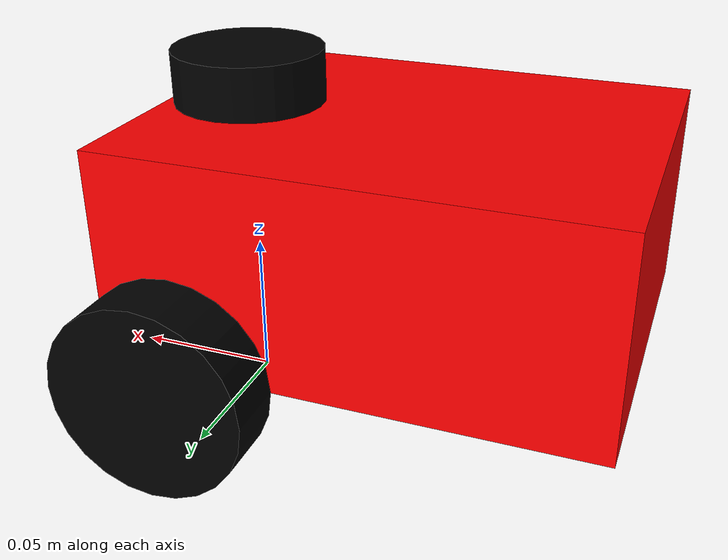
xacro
<?xml version="1.0"?>
<robot xmlns:xacro="http://www.ros.org/wiki/xacro"  name="my_robot">
        <xacro:arg name="sim_mode" default="false"/>

        <xacro:include filename="robot_real.xacro"/>
        <xacro:include filename="$(find diffbot_control)/ros2_control/ros2_control.xacro" />
        <xacro:include filename="lidar.xacro" />
</robot>

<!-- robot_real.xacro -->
<robot xmlns:xacro="http://www.ros.org/wiki/xacro">

        <xacro:include filename="inertial_macros.xacro" />

        <xacro:property name="chassis_length" value="0.16" />
        <xacro:property name="chassis_width" value="0.12" />
        <xacro:property name="chassis_height" value="0.07" />
        <xacro:property name="chassis_mass" value="0.5" />
        <xacro:property name="chassis_origin_x_offset" value="0.025" />
        <xacro:property name="wheel_radius" value="0.0325" />
        <xacro:property name="wheel_thickness" value="0.02" />
        <xacro:property name="wheel_mass" value="0.05" />
        <xacro:property name="wheel_origin_y_offset"
                value="${chassis_width / 2 + wheel_thickness / 2}" />
        <xacro:property name="wheel_origin_z_offset" value="${wheel_radius}" />
        <xacro:property name="caster_wheel_radius" value="${wheel_radius}" />
        <xacro:property name="caster_wheel_mass" value="0.03" />
        <xacro:property name="caster_wheel_origin_x_offset" value="${chassis_length - caster_wheel_radius}" />
        <xacro:property name="caster_wheel_origin_z_offset"
                value="${caster_wheel_radius}" />

        <material name="white">
                <color rgba="1 1 1 1" />
        </material>

        <material name="orange">
                <color rgba="1 0.3 0.1 1" />
        </material>

        <material name="blue">
                <color rgba="0.2 0.2 1 1" />
        </material>

        <material name="black">
                <color rgba="0 0 0 1" />
        </material>

        <material name="red">
                <color rgba="1 0 0 1" />
        </material>

        <!-- BASE LINK -->

        <link name="base_link">

        </link>

        <!-- BASE_FOOTPRINT LINK -->

        <joint name="base_footprint_joint" type="fixed">
                <parent link="base_link" />
                <child link="base_footprint" />
                <origin xyz="0 0 0" rpy="0 0 0" />
        </joint>

        <link name="base_footprint">
        </link>

        <!-- CHASSIS LINK -->

        <joint name="chassis_joint" type="fixed">
                <parent link="base_link" />
                <child link="chassis" />
                <origin xyz="${chassis_origin_x_offset} 0 ${wheel_radius}" />
        </joint>

        <link name="chassis">
                <visual>
                        <origin xyz="${-chassis_length/2} 0 ${chassis_height/2}" />
                        <geometry>
                                <box size="${chassis_length} ${chassis_width} ${chassis_height}" />
                        </geometry>
                        <material name="red" />
                </visual>
                <collision>
                        <origin xyz="${-chassis_length/2} 0 ${chassis_height/2}" />
                        <geometry>
                                <box size="${chassis_length} ${chassis_width} ${chassis_height}" />
                        </geometry>
                </collision>
                <xacro:inertial_box
                        mass="${chassis_mass}"
                        x="${chassis_length}"
                        y="${chassis_width}"
                        z="${chassis_height}">
                        <origin xyz="${-chassis_length/2} 0 ${chassis_height/2}" rpy="0 0 0" />
                </xacro:inertial_box>
        </link>

        <gazebo reference="chassis">
                <material>Gazebo/Red</material>
        </gazebo>

        <!-- LEFT WHEEL LINK -->

        <joint name="left_wheel_joint" type="continuous">
                <parent link="base_link" />
                <child link="left_wheel" />
                <origin xyz="0 ${wheel_origin_y_offset} ${wheel_origin_z_offset}" rpy="-${pi/2} 0 0" />
                <axis xyz="0 0 1" />
        </joint>

        <link name="left_wheel">
                <visual>
                        <geometry>
                                <cylinder radius="${wheel_radius}" length="${wheel_thickness}" />
                        </geometry>
                        <material name="black" />
                </visual>
                <collision>
                        <geometry>
                                <sphere radius="${wheel_radius}" />
                        </geometry>
                </collision>
                <xacro:inertial_cylinder mass="${wheel_mass}" length="${wheel_thickness}"
                        radius="${wheel_radius}">
                        <origin xyz="0 0 0" rpy="0 0 0" />
                </xacro:inertial_cylinder>
        </link>

        <gazebo reference="left_wheel">
                <material>Gazebo/Black</material>
        </gazebo>

        <!-- RIGHT WHEEL LINK -->

        <joint name="right_wheel_joint" type="continuous">
                <parent link="base_link" />
                <child link="right_wheel" />
                <origin xyz="0 ${-wheel_origin_y_offset} ${wheel_origin_z_offset}" rpy="${pi/2} 0 0" />
                <axis xyz="0 0 -1" />
        </joint>

        <link name="right_wheel">
                <visual>
                        <geometry>
                                <cylinder radius="${wheel_radius}" length="${wheel_thickness}" />
                        </geometry>
                        <material name="black" />
                </visual>
                <collision>
                        <geometry>
                                <sphere radius="${wheel_radius}" />
                        </geometry>
                </collision>
                <xacro:inertial_cylinder mass="${wheel_mass}" length="${wheel_thickness}"
                        radius="${wheel_radius}">
                        <origin xyz="0 0 0" rpy="0 0 0" />
                </xacro:inertial_cylinder>
        </link>

        <gazebo reference="right_wheel">
                <material>Gazebo/Black</material>
        </gazebo>

        <!-- CASTER WHEEL LINK -->

        <joint name="caster_wheel_joint" type="fixed">
                <parent link="chassis" />
                <child link="caster_wheel" />
                <origin xyz="${-caster_wheel_origin_x_offset} 0 0" />
        </joint>

        <link name="caster_wheel">
                <visual>
                        <geometry>
                                <sphere radius="${caster_wheel_radius}" />
                        </geometry>
                        <material name="white" />
                </visual>
                <collision>
                        <geometry>
                                <sphere radius="${caster_wheel_radius}" />
                        </geometry>
                </collision>
                <xacro:inertial_sphere mass="${caster_wheel_mass}" radius="${caster_wheel_radius}">
                        <origin xyz="0 0 0" rpy="0 0 0" />
                </xacro:inertial_sphere>
        </link>

        <gazebo reference="caster_wheel">
                <material>Gazebo/White</material>
                <mu1 value="0.001" />
                <mu2 value="0.001" />
        </gazebo>
</robot>

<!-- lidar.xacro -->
<robot xmlns:xacro="http://www.ros.org/wiki/xacro">

        <xacro:property name="chassis_height" value="0.07" />
        <xacro:property name="lidar_radius" value="0.025" />
        <xacro:property name="lidar_length" value="0.035" />
        <xacro:property name="lidar_mass" value="0.1" />
        <xacro:property name="lidar_origin_x_offset" value="0.025" />

        <joint name="lidar_joint" type="fixed">
                <parent link="chassis" />
                <child link="lidar_frame" />
                <origin xyz="${-lidar_radius} 0 ${chassis_height}" rpy="${pi} ${pi} 0" />
        </joint>

        <link name="lidar_frame">
                <visual>
                        <geometry>
                                <cylinder radius="${lidar_radius}" length="${lidar_length}" />
                        </geometry>
                        <material name="black" />
                </visual>
                <collision>
                        <geometry>
                                <cylinder radius="${lidar_radius}" length="${lidar_length}" />
                        </geometry>
                </collision>
                <xacro:inertial_cylinder
                        mass="${lidar_mass}"
                        length="${lidar_length}"
                        radius="${lidar_radius}">
                        <origin xyz="0 0 0" rpy="0 0 0" />
                </xacro:inertial_cylinder>
        </link>

        <gazebo reference="lidar_frame">
                <material>Gazebo/Black</material>

                <sensor name="gpu_lidar" type="gpu_lidar">
                        <topic>lidar</topic>
                        <update_rate>10</update_rate>
                        <lidar>
                                <scan>
                                        <horizontal>
                                                <samples>360</samples>
                                                <resolution>1</resolution>
                                                <min_angle>-3.14</min_angle>
                                                <max_angle>3.14</max_angle>
                                        </horizontal>
                                </scan>
                                <range>
                                        <min>0.08</min>
                                        <max>10.0</max>
                                        <resolution>0.01</resolution>
                                </range>
                        </lidar>
                        <visualize>true</visualize>
                        <gz_frame_id>lidar_frame</gz_frame_id>
                </sensor>
        </gazebo>

</robot>
